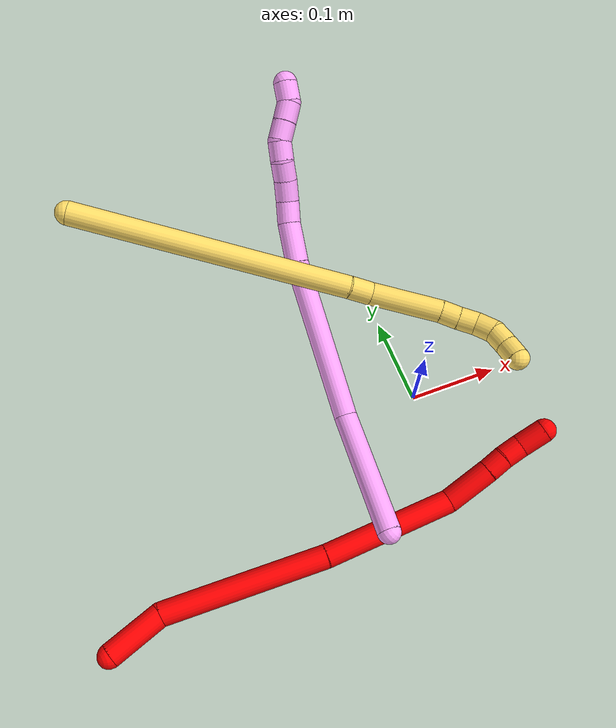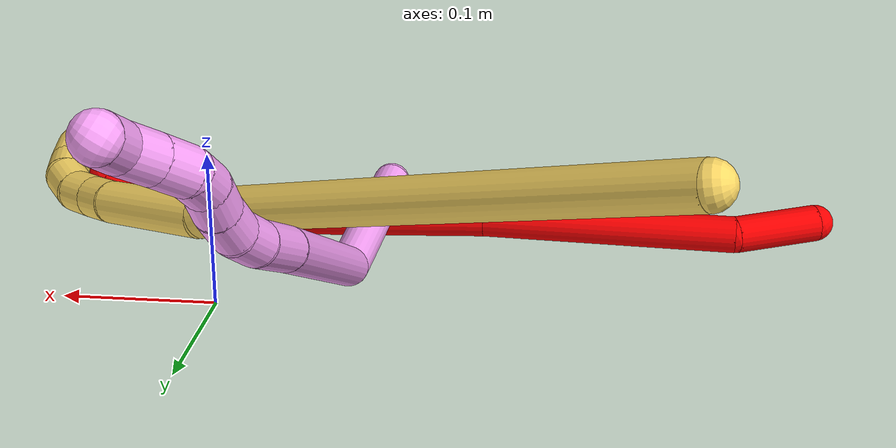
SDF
<sdf version="1.7">
 <world name="default">
  <model name="2">
   <static>0</static>
   <link name="2">
    <collision name="collision-cylinder-e_1_1_4">
     <pose>0.009213 0.007219 -0.026918 -2.87956 0.319256 -1.7698</pose>
     <geometry><cylinder><radius>0.0125</radius><length>0.058705</length></cylinder></geometry>
     <surface>
      <friction><ode><mu>1.16</mu><mu2>1.16</mu2><slip1>0</slip1><slip2>0</slip2></ode></friction>
      <contact><ode><kp>1e+06</kp><kd>1</kd><max_vel>0</max_vel><min_depth>0.001</min_depth></ode></contact>
     </surface>
    </collision>
    <visual name="visual-cylinder-e_1_1_4">
     <pose>0.009213 0.007219 -0.026918 -2.87956 0.319256 -1.7698</pose>
     <geometry><cylinder><radius>0.0125</radius><length>0.058705</length></cylinder></geometry>
     <material><ambient>1 0 0 1</ambient></material>
    </visual>
    <collision name="collision-cylinder-e_2_4_5">
     <pose>0.062412 0.007383 -0.128678 3.0476 0.529418 2.79802</pose>
     <geometry><cylinder><radius>0.0125</radius><length>0.174195</length></cylinder></geometry>
     <surface>
      <friction><ode><mu>1.16</mu><mu2>1.16</mu2><slip1>0</slip1><slip2>0</slip2></ode></friction>
      <contact><ode><kp>1e+06</kp><kd>1</kd><max_vel>0</max_vel><min_depth>0.001</min_depth></ode></contact>
     </surface>
    </collision>
    <visual name="visual-cylinder-e_2_4_5">
     <pose>0.062412 0.007383 -0.128678 3.0476 0.529418 2.79802</pose>
     <geometry><cylinder><radius>0.0125</radius><length>0.174195</length></cylinder></geometry>
     <material><ambient>1 0 0 1</ambient></material>
    </visual>
    <collision name="collision-cylinder-e_3_5_6">
     <pose>0.138967 -0.0001 -0.266398 3.13479 0.477902 3.11367</pose>
     <geometry><cylinder><radius>0.0125</radius><length>0.141627</length></cylinder></geometry>
     <surface>
      <friction><ode><mu>1.16</mu><mu2>1.16</mu2><slip1>0</slip1><slip2>0</slip2></ode></friction>
      <contact><ode><kp>1e+06</kp><kd>1</kd><max_vel>0</max_vel><min_depth>0.001</min_depth></ode></contact>
     </surface>
    </collision>
    <visual name="visual-cylinder-e_3_5_6">
     <pose>0.138967 -0.0001 -0.266398 3.13479 0.477902 3.11367</pose>
     <geometry><cylinder><radius>0.0125</radius><length>0.141627</length></cylinder></geometry>
     <material><ambient>1 0 0 1</ambient></material>
    </visual>
    <collision name="collision-cylinder-e_4_6_7">
     <pose>0.188359 0.006488 -0.348212 -2.78677 0.694587 -2.22175</pose>
     <geometry><cylinder><radius>0.0125</radius><length>0.052565</length></cylinder></geometry>
     <surface>
      <friction><ode><mu>1.16</mu><mu2>1.16</mu2><slip1>0</slip1><slip2>0</slip2></ode></friction>
      <contact><ode><kp>1e+06</kp><kd>1</kd><max_vel>0</max_vel><min_depth>0.001</min_depth></ode></contact>
     </surface>
    </collision>
    <visual name="visual-cylinder-e_4_6_7">
     <pose>0.188359 0.006488 -0.348212 -2.78677 0.694587 -2.22175</pose>
     <geometry><cylinder><radius>0.0125</radius><length>0.052565</length></cylinder></geometry>
     <material><ambient>1 0 0 1</ambient></material>
    </visual>
    <collision name="collision-cylinder-e_5_7_8">
     <pose>0.21163 0.01679 -0.374954 -2.74314 0.650783 -2.06304</pose>
     <geometry><cylinder><radius>0.0125</radius><length>0.02129</length></cylinder></geometry>
     <surface>
      <friction><ode><mu>1.16</mu><mu2>1.16</mu2><slip1>0</slip1><slip2>0</slip2></ode></friction>
      <contact><ode><kp>1e+06</kp><kd>1</kd><max_vel>0</max_vel><min_depth>0.001</min_depth></ode></contact>
     </surface>
    </collision>
    <visual name="visual-cylinder-e_5_7_8">
     <pose>0.21163 0.01679 -0.374954 -2.74314 0.650783 -2.06304</pose>
     <geometry><cylinder><radius>0.0125</radius><length>0.02129</length></cylinder></geometry>
     <material><ambient>1 0 0 1</ambient></material>
    </visual>
    <collision name="collision-cylinder-e_6_8_9">
     <pose>0.224182 0.022308 -0.391518 -2.89214 0.593936 -2.36391</pose>
     <geometry><cylinder><radius>0.0125</radius><length>0.021812</length></cylinder></geometry>
     <surface>
      <friction><ode><mu>1.16</mu><mu2>1.16</mu2><slip1>0</slip1><slip2>0</slip2></ode></friction>
      <contact><ode><kp>1e+06</kp><kd>1</kd><max_vel>0</max_vel><min_depth>0.001</min_depth></ode></contact>
     </surface>
    </collision>
    <visual name="visual-cylinder-e_6_8_9">
     <pose>0.224182 0.022308 -0.391518 -2.89214 0.593936 -2.36391</pose>
     <geometry><cylinder><radius>0.0125</radius><length>0.021812</length></cylinder></geometry>
     <material><ambient>1 0 0 1</ambient></material>
    </visual>
    <collision name="collision-cylinder-e_7_9_2">
     <pose>0.241149 0.027547 -0.410024 -2.84225 0.816814 -2.47097</pose>
     <geometry><cylinder><radius>0.0125</radius><length>0.029806</length></cylinder></geometry>
     <surface>
      <friction><ode><mu>1.16</mu><mu2>1.16</mu2><slip1>0</slip1><slip2>0</slip2></ode></friction>
      <contact><ode><kp>1e+06</kp><kd>1</kd><max_vel>0</max_vel><min_depth>0.001</min_depth></ode></contact>
     </surface>
    </collision>
    <visual name="visual-cylinder-e_7_9_2">
     <pose>0.241149 0.027547 -0.410024 -2.84225 0.816814 -2.47097</pose>
     <geometry><cylinder><radius>0.0125</radius><length>0.029806</length></cylinder></geometry>
     <material><ambient>1 0 0 1</ambient></material>
    </visual>
    <collision name="collision-sphere-2">
     <pose>0.252013 0.030556 -0.419772 0 -0 0</pose>
     <geometry><sphere><radius>0.0125</radius></sphere></geometry>
     <surface>
      <friction><ode><mu>1.16</mu><mu2>1.16</mu2><slip1>0</slip1><slip2>0</slip2></ode></friction>
      <contact><ode><kp>1e+06</kp><kd>1</kd><max_vel>0</max_vel><min_depth>0.001</min_depth></ode></contact>
     </surface>
    </collision>
    <visual name="visual-sphere-2">
     <pose>0.252013 0.030556 -0.419772 0 -0 0</pose>
     <geometry><sphere><radius>0.0125</radius></sphere></geometry>
     <material><ambient>1 0 0 1</ambient></material>
    </visual>
    <collision name="collision-sphere-9">
     <pose>0.230286 0.024539 -0.400276 0 -0 0</pose>
     <geometry><sphere><radius>0.0125</radius></sphere></geometry>
     <surface>
      <friction><ode><mu>1.16</mu><mu2>1.16</mu2><slip1>0</slip1><slip2>0</slip2></ode></friction>
      <contact><ode><kp>1e+06</kp><kd>1</kd><max_vel>0</max_vel><min_depth>0.001</min_depth></ode></contact>
     </surface>
    </collision>
    <visual name="visual-sphere-9">
     <pose>0.230286 0.024539 -0.400276 0 -0 0</pose>
     <geometry><sphere><radius>0.0125</radius></sphere></geometry>
     <material><ambient>1 0 0 1</ambient></material>
    </visual>
    <collision name="collision-sphere-4">
     <pose>0.018425 0.014439 -0.053836 0 -0 0</pose>
     <geometry><sphere><radius>0.0125</radius></sphere></geometry>
     <surface>
      <friction><ode><mu>1.16</mu><mu2>1.16</mu2><slip1>0</slip1><slip2>0</slip2></ode></friction>
      <contact><ode><kp>1e+06</kp><kd>1</kd><max_vel>0</max_vel><min_depth>0.001</min_depth></ode></contact>
     </surface>
    </collision>
    <visual name="visual-sphere-4">
     <pose>0.018425 0.014439 -0.053836 0 -0 0</pose>
     <geometry><sphere><radius>0.0125</radius></sphere></geometry>
     <material><ambient>1 0 0 1</ambient></material>
    </visual>
    <collision name="collision-sphere-1">
     <geometry><sphere><radius>0.0125</radius></sphere></geometry>
     <surface>
      <friction><ode><mu>1.16</mu><mu2>1.16</mu2><slip1>0</slip1><slip2>0</slip2></ode></friction>
      <contact><ode><kp>1e+06</kp><kd>1</kd><max_vel>0</max_vel><min_depth>0.001</min_depth></ode></contact>
     </surface>
    </collision>
    <visual name="visual-sphere-1">
     <geometry><sphere><radius>0.0125</radius></sphere></geometry>
     <material><ambient>1 0 0 1</ambient></material>
    </visual>
    <collision name="collision-sphere-8">
     <pose>0.218079 0.020076 -0.38276 0 -0 0</pose>
     <geometry><sphere><radius>0.0125</radius></sphere></geometry>
     <surface>
      <friction><ode><mu>1.16</mu><mu2>1.16</mu2><slip1>0</slip1><slip2>0</slip2></ode></friction>
      <contact><ode><kp>1e+06</kp><kd>1</kd><max_vel>0</max_vel><min_depth>0.001</min_depth></ode></contact>
     </surface>
    </collision>
    <visual name="visual-sphere-8">
     <pose>0.218079 0.020076 -0.38276 0 -0 0</pose>
     <geometry><sphere><radius>0.0125</radius></sphere></geometry>
     <material><ambient>1 0 0 1</ambient></material>
    </visual>
    <collision name="collision-sphere-5">
     <pose>0.106399 0.000328 -0.20352 0 -0 0</pose>
     <geometry><sphere><radius>0.0125</radius></sphere></geometry>
     <surface>
      <friction><ode><mu>1.16</mu><mu2>1.16</mu2><slip1>0</slip1><slip2>0</slip2></ode></friction>
      <contact><ode><kp>1e+06</kp><kd>1</kd><max_vel>0</max_vel><min_depth>0.001</min_depth></ode></contact>
     </surface>
    </collision>
    <visual name="visual-sphere-5">
     <pose>0.106399 0.000328 -0.20352 0 -0 0</pose>
     <geometry><sphere><radius>0.0125</radius></sphere></geometry>
     <material><ambient>1 0 0 1</ambient></material>
    </visual>
    <collision name="collision-sphere-6">
     <pose>0.171536 -0.000527 -0.329277 0 -0 0</pose>
     <geometry><sphere><radius>0.0125</radius></sphere></geometry>
     <surface>
      <friction><ode><mu>1.16</mu><mu2>1.16</mu2><slip1>0</slip1><slip2>0</slip2></ode></friction>
      <contact><ode><kp>1e+06</kp><kd>1</kd><max_vel>0</max_vel><min_depth>0.001</min_depth></ode></contact>
     </surface>
    </collision>
    <visual name="visual-sphere-6">
     <pose>0.171536 -0.000527 -0.329277 0 -0 0</pose>
     <geometry><sphere><radius>0.0125</radius></sphere></geometry>
     <material><ambient>1 0 0 1</ambient></material>
    </visual>
    <collision name="collision-sphere-7">
     <pose>0.205181 0.013504 -0.367148 0 -0 0</pose>
     <geometry><sphere><radius>0.0125</radius></sphere></geometry>
     <surface>
      <friction><ode><mu>1.16</mu><mu2>1.16</mu2><slip1>0</slip1><slip2>0</slip2></ode></friction>
      <contact><ode><kp>1e+06</kp><kd>1</kd><max_vel>0</max_vel><min_depth>0.001</min_depth></ode></contact>
     </surface>
    </collision>
    <visual name="visual-sphere-7">
     <pose>0.205181 0.013504 -0.367148 0 -0 0</pose>
     <geometry><sphere><radius>0.0125</radius></sphere></geometry>
     <material><ambient>1 0 0 1</ambient></material>
    </visual>
    <inertial>
     <pose>0.115157 0.007404 -0.217544 0 -0 0</pose>
     <mass>0.5</mass>
     <inertia>
      <ixx>-0.000466</ixx>
      <ixy>0</ixy>
      <ixz>0</ixz>
      <iyy>0.000798</iyy>
      <iyz>0</iyz>
      <izz>-0.000362</izz>
     </inertia>
    </inertial>
   </link>
   <pose>-0.388089 -0.146341 0.014939 0.67056 -0.973482 -0.525258</pose>
  </model>
  <model name="4">
   <static>0</static>
   <link name="4">
    <collision name="collision-cylinder-e_1_1_4">
     <pose>0.023249 0.062705 0.006653 -1.4651 0.35324 -0.318374</pose>
     <geometry><cylinder><radius>0.0125</radius><length>0.134413</length></cylinder></geometry>
     <surface>
      <friction><ode><mu>1.16</mu><mu2>1.16</mu2><slip1>0</slip1><slip2>0</slip2></ode></friction>
      <contact><ode><kp>1e+06</kp><kd>1</kd><max_vel>0</max_vel><min_depth>0.001</min_depth></ode></contact>
     </surface>
    </collision>
    <visual name="visual-cylinder-e_1_1_4">
     <pose>0.023249 0.062705 0.006653 -1.4651 0.35324 -0.318374</pose>
     <geometry><cylinder><radius>0.0125</radius><length>0.134413</length></cylinder></geometry>
     <material><ambient>1 0.65098 0.996078 1</ambient></material>
    </visual>
    <collision name="collision-cylinder-e_2_4_5">
     <pose>0.037279 0.206842 0.042992 -1.22121 -0.105974 0.074198</pose>
     <geometry><cylinder><radius>0.0125</radius><length>0.174328</length></cylinder></geometry>
     <surface>
      <friction><ode><mu>1.16</mu><mu2>1.16</mu2><slip1>0</slip1><slip2>0</slip2></ode></friction>
      <contact><ode><kp>1e+06</kp><kd>1</kd><max_vel>0</max_vel><min_depth>0.001</min_depth></ode></contact>
     </surface>
    </collision>
    <visual name="visual-cylinder-e_2_4_5">
     <pose>0.037279 0.206842 0.042992 -1.22121 -0.105974 0.074198</pose>
     <geometry><cylinder><radius>0.0125</radius><length>0.174328</length></cylinder></geometry>
     <material><ambient>1 0.65098 0.996078 1</ambient></material>
    </visual>
    <collision name="collision-cylinder-e_3_5_6">
     <pose>0.027051 0.307924 0.08196 -1.12952 -0.046352 0.029372</pose>
     <geometry><cylinder><radius>0.0125</radius><length>0.043509</length></cylinder></geometry>
     <surface>
      <friction><ode><mu>1.16</mu><mu2>1.16</mu2><slip1>0</slip1><slip2>0</slip2></ode></friction>
      <contact><ode><kp>1e+06</kp><kd>1</kd><max_vel>0</max_vel><min_depth>0.001</min_depth></ode></contact>
     </surface>
    </collision>
    <visual name="visual-cylinder-e_3_5_6">
     <pose>0.027051 0.307924 0.08196 -1.12952 -0.046352 0.029372</pose>
     <geometry><cylinder><radius>0.0125</radius><length>0.043509</length></cylinder></geometry>
     <material><ambient>1 0.65098 0.996078 1</ambient></material>
    </visual>
    <collision name="collision-cylinder-e_4_6_7">
     <pose>0.024668 0.337329 0.098037 -0.962383 -0.115152 0.060172</pose>
     <geometry><cylinder><radius>0.0125</radius><length>0.023937</length></cylinder></geometry>
     <surface>
      <friction><ode><mu>1.16</mu><mu2>1.16</mu2><slip1>0</slip1><slip2>0</slip2></ode></friction>
      <contact><ode><kp>1e+06</kp><kd>1</kd><max_vel>0</max_vel><min_depth>0.001</min_depth></ode></contact>
     </surface>
    </collision>
    <visual name="visual-cylinder-e_4_6_7">
     <pose>0.024668 0.337329 0.098037 -0.962383 -0.115152 0.060172</pose>
     <geometry><cylinder><radius>0.0125</radius><length>0.023937</length></cylinder></geometry>
     <material><ambient>1 0.65098 0.996078 1</ambient></material>
    </visual>
    <collision name="collision-cylinder-e_5_7_8">
     <pose>0.019304 0.355288 0.111627 -0.879053 -0.358255 0.169868</pose>
     <geometry><cylinder><radius>0.0125</radius><length>0.022749</length></cylinder></geometry>
     <surface>
      <friction><ode><mu>1.16</mu><mu2>1.16</mu2><slip1>0</slip1><slip2>0</slip2></ode></friction>
      <contact><ode><kp>1e+06</kp><kd>1</kd><max_vel>0</max_vel><min_depth>0.001</min_depth></ode></contact>
     </surface>
    </collision>
    <visual name="visual-cylinder-e_5_7_8">
     <pose>0.019304 0.355288 0.111627 -0.879053 -0.358255 0.169868</pose>
     <geometry><cylinder><radius>0.0125</radius><length>0.022749</length></cylinder></geometry>
     <material><ambient>1 0.65098 0.996078 1</ambient></material>
    </visual>
    <collision name="collision-cylinder-e_6_8_9">
     <pose>0.010786 0.370534 0.123988 -0.901895 -0.467358 0.229504</pose>
     <geometry><cylinder><radius>0.0125</radius><length>0.020109</length></cylinder></geometry>
     <surface>
      <friction><ode><mu>1.16</mu><mu2>1.16</mu2><slip1>0</slip1><slip2>0</slip2></ode></friction>
      <contact><ode><kp>1e+06</kp><kd>1</kd><max_vel>0</max_vel><min_depth>0.001</min_depth></ode></contact>
     </surface>
    </collision>
    <visual name="visual-cylinder-e_6_8_9">
     <pose>0.010786 0.370534 0.123988 -0.901895 -0.467358 0.229504</pose>
     <geometry><cylinder><radius>0.0125</radius><length>0.020109</length></cylinder></geometry>
     <material><ambient>1 0.65098 0.996078 1</ambient></material>
    </visual>
    <collision name="collision-cylinder-e_7_9_10">
     <pose>0.004079 0.385739 0.135017 -0.981032 -0.218161 0.11684</pose>
     <geometry><cylinder><radius>0.0125</radius><length>0.020121</length></cylinder></geometry>
     <surface>
      <friction><ode><mu>1.16</mu><mu2>1.16</mu2><slip1>0</slip1><slip2>0</slip2></ode></friction>
      <contact><ode><kp>1e+06</kp><kd>1</kd><max_vel>0</max_vel><min_depth>0.001</min_depth></ode></contact>
     </surface>
    </collision>
    <visual name="visual-cylinder-e_7_9_10">
     <pose>0.004079 0.385739 0.135017 -0.981032 -0.218161 0.11684</pose>
     <geometry><cylinder><radius>0.0125</radius><length>0.020121</length></cylinder></geometry>
     <material><ambient>1 0.65098 0.996078 1</ambient></material>
    </visual>
    <collision name="collision-cylinder-e_8_10_11">
     <pose>0.002385 0.400233 0.148393 -0.674835 0.047696 -0.016736</pose>
     <geometry><cylinder><radius>0.0125</radius><length>0.020292</length></cylinder></geometry>
     <surface>
      <friction><ode><mu>1.16</mu><mu2>1.16</mu2><slip1>0</slip1><slip2>0</slip2></ode></friction>
      <contact><ode><kp>1e+06</kp><kd>1</kd><max_vel>0</max_vel><min_depth>0.001</min_depth></ode></contact>
     </surface>
    </collision>
    <visual name="visual-cylinder-e_8_10_11">
     <pose>0.002385 0.400233 0.148393 -0.674835 0.047696 -0.016736</pose>
     <geometry><cylinder><radius>0.0125</radius><length>0.020292</length></cylinder></geometry>
     <material><ambient>1 0.65098 0.996078 1</ambient></material>
    </visual>
    <collision name="collision-cylinder-e_9_11_12">
     <pose>0.003496 0.413074 0.164118 -0.694687 0.061549 -0.022288</pose>
     <geometry><cylinder><radius>0.0125</radius><length>0.020377</length></cylinder></geometry>
     <surface>
      <friction><ode><mu>1.16</mu><mu2>1.16</mu2><slip1>0</slip1><slip2>0</slip2></ode></friction>
      <contact><ode><kp>1e+06</kp><kd>1</kd><max_vel>0</max_vel><min_depth>0.001</min_depth></ode></contact>
     </surface>
    </collision>
    <visual name="visual-cylinder-e_9_11_12">
     <pose>0.003496 0.413074 0.164118 -0.694687 0.061549 -0.022288</pose>
     <geometry><cylinder><radius>0.0125</radius><length>0.020377</length></cylinder></geometry>
     <material><ambient>1 0.65098 0.996078 1</ambient></material>
    </visual>
    <collision name="collision-cylinder-e_10_12_2">
     <pose>0.003086 0.428521 0.176483 -1.0997 -0.103012 0.063171</pose>
     <geometry><cylinder><radius>0.0125</radius><length>0.020167</length></cylinder></geometry>
     <surface>
      <friction><ode><mu>1.16</mu><mu2>1.16</mu2><slip1>0</slip1><slip2>0</slip2></ode></friction>
      <contact><ode><kp>1e+06</kp><kd>1</kd><max_vel>0</max_vel><min_depth>0.001</min_depth></ode></contact>
     </surface>
    </collision>
    <visual name="visual-cylinder-e_10_12_2">
     <pose>0.003086 0.428521 0.176483 -1.0997 -0.103012 0.063171</pose>
     <geometry><cylinder><radius>0.0125</radius><length>0.020167</length></cylinder></geometry>
     <material><ambient>1 0.65098 0.996078 1</ambient></material>
    </visual>
    <collision name="collision-sphere-2">
     <pose>0.002049 0.437459 0.181035 0 -0 0</pose>
     <geometry><sphere><radius>0.0125</radius></sphere></geometry>
     <surface>
      <friction><ode><mu>1.16</mu><mu2>1.16</mu2><slip1>0</slip1><slip2>0</slip2></ode></friction>
      <contact><ode><kp>1e+06</kp><kd>1</kd><max_vel>0</max_vel><min_depth>0.001</min_depth></ode></contact>
     </surface>
    </collision>
    <visual name="visual-sphere-2">
     <pose>0.002049 0.437459 0.181035 0 -0 0</pose>
     <geometry><sphere><radius>0.0125</radius></sphere></geometry>
     <material><ambient>1 0.65098 0.996078 1</ambient></material>
    </visual>
    <collision name="collision-sphere-12">
     <pose>0.004122 0.419584 0.171931 0 -0 0</pose>
     <geometry><sphere><radius>0.0125</radius></sphere></geometry>
     <surface>
      <friction><ode><mu>1.16</mu><mu2>1.16</mu2><slip1>0</slip1><slip2>0</slip2></ode></friction>
      <contact><ode><kp>1e+06</kp><kd>1</kd><max_vel>0</max_vel><min_depth>0.001</min_depth></ode></contact>
     </surface>
    </collision>
    <visual name="visual-sphere-12">
     <pose>0.004122 0.419584 0.171931 0 -0 0</pose>
     <geometry><sphere><radius>0.0125</radius></sphere></geometry>
     <material><ambient>1 0.65098 0.996078 1</ambient></material>
    </visual>
    <collision name="collision-sphere-11">
     <pose>0.002869 0.406565 0.156306 0 -0 0</pose>
     <geometry><sphere><radius>0.0125</radius></sphere></geometry>
     <surface>
      <friction><ode><mu>1.16</mu><mu2>1.16</mu2><slip1>0</slip1><slip2>0</slip2></ode></friction>
      <contact><ode><kp>1e+06</kp><kd>1</kd><max_vel>0</max_vel><min_depth>0.001</min_depth></ode></contact>
     </surface>
    </collision>
    <visual name="visual-sphere-11">
     <pose>0.002869 0.406565 0.156306 0 -0 0</pose>
     <geometry><sphere><radius>0.0125</radius></sphere></geometry>
     <material><ambient>1 0.65098 0.996078 1</ambient></material>
    </visual>
    <collision name="collision-sphere-10">
     <pose>0.001902 0.393902 0.14048 0 -0 0</pose>
     <geometry><sphere><radius>0.0125</radius></sphere></geometry>
     <surface>
      <friction><ode><mu>1.16</mu><mu2>1.16</mu2><slip1>0</slip1><slip2>0</slip2></ode></friction>
      <contact><ode><kp>1e+06</kp><kd>1</kd><max_vel>0</max_vel><min_depth>0.001</min_depth></ode></contact>
     </surface>
    </collision>
    <visual name="visual-sphere-10">
     <pose>0.001902 0.393902 0.14048 0 -0 0</pose>
     <geometry><sphere><radius>0.0125</radius></sphere></geometry>
     <material><ambient>1 0.65098 0.996078 1</ambient></material>
    </visual>
    <collision name="collision-sphere-9">
     <pose>0.006257 0.377576 0.129555 0 -0 0</pose>
     <geometry><sphere><radius>0.0125</radius></sphere></geometry>
     <surface>
      <friction><ode><mu>1.16</mu><mu2>1.16</mu2><slip1>0</slip1><slip2>0</slip2></ode></friction>
      <contact><ode><kp>1e+06</kp><kd>1</kd><max_vel>0</max_vel><min_depth>0.001</min_depth></ode></contact>
     </surface>
    </collision>
    <visual name="visual-sphere-9">
     <pose>0.006257 0.377576 0.129555 0 -0 0</pose>
     <geometry><sphere><radius>0.0125</radius></sphere></geometry>
     <material><ambient>1 0.65098 0.996078 1</ambient></material>
    </visual>
    <collision name="collision-sphere-4">
     <pose>0.046499 0.12541 0.013306 0 -0 0</pose>
     <geometry><sphere><radius>0.0125</radius></sphere></geometry>
     <surface>
      <friction><ode><mu>1.16</mu><mu2>1.16</mu2><slip1>0</slip1><slip2>0</slip2></ode></friction>
      <contact><ode><kp>1e+06</kp><kd>1</kd><max_vel>0</max_vel><min_depth>0.001</min_depth></ode></contact>
     </surface>
    </collision>
    <visual name="visual-sphere-4">
     <pose>0.046499 0.12541 0.013306 0 -0 0</pose>
     <geometry><sphere><radius>0.0125</radius></sphere></geometry>
     <material><ambient>1 0.65098 0.996078 1</ambient></material>
    </visual>
    <collision name="collision-sphere-1">
     <geometry><sphere><radius>0.0125</radius></sphere></geometry>
     <surface>
      <friction><ode><mu>1.16</mu><mu2>1.16</mu2><slip1>0</slip1><slip2>0</slip2></ode></friction>
      <contact><ode><kp>1e+06</kp><kd>1</kd><max_vel>0</max_vel><min_depth>0.001</min_depth></ode></contact>
     </surface>
    </collision>
    <visual name="visual-sphere-1">
     <geometry><sphere><radius>0.0125</radius></sphere></geometry>
     <material><ambient>1 0.65098 0.996078 1</ambient></material>
    </visual>
    <collision name="collision-sphere-8">
     <pose>0.015316 0.363492 0.118422 0 -0 0</pose>
     <geometry><sphere><radius>0.0125</radius></sphere></geometry>
     <surface>
      <friction><ode><mu>1.16</mu><mu2>1.16</mu2><slip1>0</slip1><slip2>0</slip2></ode></friction>
      <contact><ode><kp>1e+06</kp><kd>1</kd><max_vel>0</max_vel><min_depth>0.001</min_depth></ode></contact>
     </surface>
    </collision>
    <visual name="visual-sphere-8">
     <pose>0.015316 0.363492 0.118422 0 -0 0</pose>
     <geometry><sphere><radius>0.0125</radius></sphere></geometry>
     <material><ambient>1 0.65098 0.996078 1</ambient></material>
    </visual>
    <collision name="collision-sphere-5">
     <pose>0.028059 0.288275 0.072679 0 -0 0</pose>
     <geometry><sphere><radius>0.0125</radius></sphere></geometry>
     <surface>
      <friction><ode><mu>1.16</mu><mu2>1.16</mu2><slip1>0</slip1><slip2>0</slip2></ode></friction>
      <contact><ode><kp>1e+06</kp><kd>1</kd><max_vel>0</max_vel><min_depth>0.001</min_depth></ode></contact>
     </surface>
    </collision>
    <visual name="visual-sphere-5">
     <pose>0.028059 0.288275 0.072679 0 -0 0</pose>
     <geometry><sphere><radius>0.0125</radius></sphere></geometry>
     <material><ambient>1 0.65098 0.996078 1</ambient></material>
    </visual>
    <collision name="collision-sphere-6">
     <pose>0.026043 0.327573 0.091241 0 -0 0</pose>
     <geometry><sphere><radius>0.0125</radius></sphere></geometry>
     <surface>
      <friction><ode><mu>1.16</mu><mu2>1.16</mu2><slip1>0</slip1><slip2>0</slip2></ode></friction>
      <contact><ode><kp>1e+06</kp><kd>1</kd><max_vel>0</max_vel><min_depth>0.001</min_depth></ode></contact>
     </surface>
    </collision>
    <visual name="visual-sphere-6">
     <pose>0.026043 0.327573 0.091241 0 -0 0</pose>
     <geometry><sphere><radius>0.0125</radius></sphere></geometry>
     <material><ambient>1 0.65098 0.996078 1</ambient></material>
    </visual>
    <collision name="collision-sphere-7">
     <pose>0.023293 0.347085 0.104832 0 -0 0</pose>
     <geometry><sphere><radius>0.0125</radius></sphere></geometry>
     <surface>
      <friction><ode><mu>1.16</mu><mu2>1.16</mu2><slip1>0</slip1><slip2>0</slip2></ode></friction>
      <contact><ode><kp>1e+06</kp><kd>1</kd><max_vel>0</max_vel><min_depth>0.001</min_depth></ode></contact>
     </surface>
    </collision>
    <visual name="visual-sphere-7">
     <pose>0.023293 0.347085 0.104832 0 -0 0</pose>
     <geometry><sphere><radius>0.0125</radius></sphere></geometry>
     <material><ambient>1 0.65098 0.996078 1</ambient></material>
    </visual>
    <inertial>
     <pose>0.024622 0.228868 0.063931 0 -0 0</pose>
     <mass>0.5</mass>
     <inertia>
      <ixx>0.000622</ixx>
      <ixy>0</ixy>
      <ixz>0</ixz>
      <iyy>0.000218</iyy>
      <iyz>0</iyz>
      <izz>-0.000637</izz>
     </inertia>
    </inertial>
   </link>
   <pose>-0.093302 -0.137056 0.037006 0.30726 0.949668 0.478497</pose>
  </model>
  <model name="5">
   <static>0</static>
   <link name="5">
    <collision name="collision-cylinder-e_1_1_4">
     <pose>0.004317 -0.035497 -0.143211 2.89862 0.029252 0.238484</pose>
     <geometry><cylinder><radius>0.0125</radius><length>0.295215</length></cylinder></geometry>
     <surface>
      <friction><ode><mu>1.16</mu><mu2>1.16</mu2><slip1>0</slip1><slip2>0</slip2></ode></friction>
      <contact><ode><kp>1e+06</kp><kd>1</kd><max_vel>0</max_vel><min_depth>0.001</min_depth></ode></contact>
     </surface>
    </collision>
    <visual name="visual-cylinder-e_1_1_4">
     <pose>0.004317 -0.035497 -0.143211 2.89862 0.029252 0.238484</pose>
     <geometry><cylinder><radius>0.0125</radius><length>0.295215</length></cylinder></geometry>
     <material><ambient>1 0.858824 0.4 1</ambient></material>
    </visual>
    <collision name="collision-cylinder-e_2_4_5">
     <pose>0.00728 -0.073738 -0.298796 2.92345 -0.106489 -0.905877</pose>
     <geometry><cylinder><radius>0.0125</radius><length>0.025495</length></cylinder></geometry>
     <surface>
      <friction><ode><mu>1.16</mu><mu2>1.16</mu2><slip1>0</slip1><slip2>0</slip2></ode></friction>
      <contact><ode><kp>1e+06</kp><kd>1</kd><max_vel>0</max_vel><min_depth>0.001</min_depth></ode></contact>
     </surface>
    </collision>
    <visual name="visual-cylinder-e_2_4_5">
     <pose>0.00728 -0.073738 -0.298796 2.92345 -0.106489 -0.905877</pose>
     <geometry><cylinder><radius>0.0125</radius><length>0.025495</length></cylinder></geometry>
     <material><ambient>1 0.858824 0.4 1</ambient></material>
    </visual>
    <collision name="collision-cylinder-e_3_5_6">
     <pose>0.012372 -0.087488 -0.348027 2.85138 0.166058 1.03534</pose>
     <geometry><cylinder><radius>0.0125</radius><length>0.078003</length></cylinder></geometry>
     <surface>
      <friction><ode><mu>1.16</mu><mu2>1.16</mu2><slip1>0</slip1><slip2>0</slip2></ode></friction>
      <contact><ode><kp>1e+06</kp><kd>1</kd><max_vel>0</max_vel><min_depth>0.001</min_depth></ode></contact>
     </surface>
    </collision>
    <visual name="visual-cylinder-e_3_5_6">
     <pose>0.012372 -0.087488 -0.348027 2.85138 0.166058 1.03534</pose>
     <geometry><cylinder><radius>0.0125</radius><length>0.078003</length></cylinder></geometry>
     <material><ambient>1 0.858824 0.4 1</ambient></material>
    </visual>
    <collision name="collision-cylinder-e_4_6_7">
     <pose>0.020734 -0.102642 -0.393874 2.70944 0.19116 0.823592</pose>
     <geometry><cylinder><radius>0.0125</radius><length>0.020167</length></cylinder></geometry>
     <surface>
      <friction><ode><mu>1.16</mu><mu2>1.16</mu2><slip1>0</slip1><slip2>0</slip2></ode></friction>
      <contact><ode><kp>1e+06</kp><kd>1</kd><max_vel>0</max_vel><min_depth>0.001</min_depth></ode></contact>
     </surface>
    </collision>
    <visual name="visual-cylinder-e_4_6_7">
     <pose>0.020734 -0.102642 -0.393874 2.70944 0.19116 0.823592</pose>
     <geometry><cylinder><radius>0.0125</radius><length>0.020167</length></cylinder></geometry>
     <material><ambient>1 0.858824 0.4 1</ambient></material>
    </visual>
    <collision name="collision-cylinder-e_5_7_8">
     <pose>0.025086 -0.110444 -0.411879 2.75629 0.245368 1.12737</pose>
     <geometry><cylinder><radius>0.0125</radius><length>0.020057</length></cylinder></geometry>
     <surface>
      <friction><ode><mu>1.16</mu><mu2>1.16</mu2><slip1>0</slip1><slip2>0</slip2></ode></friction>
      <contact><ode><kp>1e+06</kp><kd>1</kd><max_vel>0</max_vel><min_depth>0.001</min_depth></ode></contact>
     </surface>
    </collision>
    <visual name="visual-cylinder-e_5_7_8">
     <pose>0.025086 -0.110444 -0.411879 2.75629 0.245368 1.12737</pose>
     <geometry><cylinder><radius>0.0125</radius><length>0.020057</length></cylinder></geometry>
     <material><ambient>1 0.858824 0.4 1</ambient></material>
    </visual>
    <collision name="collision-cylinder-e_6_8_9">
     <pose>0.032218 -0.119654 -0.428353 2.50161 0.467625 1.24636</pose>
     <geometry><cylinder><radius>0.0125</radius><length>0.020837</length></cylinder></geometry>
     <surface>
      <friction><ode><mu>1.16</mu><mu2>1.16</mu2><slip1>0</slip1><slip2>0</slip2></ode></friction>
      <contact><ode><kp>1e+06</kp><kd>1</kd><max_vel>0</max_vel><min_depth>0.001</min_depth></ode></contact>
     </surface>
    </collision>
    <visual name="visual-cylinder-e_6_8_9">
     <pose>0.032218 -0.119654 -0.428353 2.50161 0.467625 1.24636</pose>
     <geometry><cylinder><radius>0.0125</radius><length>0.020837</length></cylinder></geometry>
     <material><ambient>1 0.858824 0.4 1</ambient></material>
    </visual>
    <collision name="collision-cylinder-e_7_9_10">
     <pose>0.040736 -0.133512 -0.439998 2.03773 0.389909 0.620636</pose>
     <geometry><cylinder><radius>0.0125</radius><length>0.020109</length></cylinder></geometry>
     <surface>
      <friction><ode><mu>1.16</mu><mu2>1.16</mu2><slip1>0</slip1><slip2>0</slip2></ode></friction>
      <contact><ode><kp>1e+06</kp><kd>1</kd><max_vel>0</max_vel><min_depth>0.001</min_depth></ode></contact>
     </surface>
    </collision>
    <visual name="visual-cylinder-e_7_9_10">
     <pose>0.040736 -0.133512 -0.439998 2.03773 0.389909 0.620636</pose>
     <geometry><cylinder><radius>0.0125</radius><length>0.020109</length></cylinder></geometry>
     <material><ambient>1 0.858824 0.4 1</ambient></material>
    </visual>
    <collision name="collision-cylinder-e_8_10_2">
     <pose>0.049665 -0.150115 -0.44668 1.86285 0.532525 0.703116</pose>
     <geometry><cylinder><radius>0.0125</radius><length>0.020118</length></cylinder></geometry>
     <surface>
      <friction><ode><mu>1.16</mu><mu2>1.16</mu2><slip1>0</slip1><slip2>0</slip2></ode></friction>
      <contact><ode><kp>1e+06</kp><kd>1</kd><max_vel>0</max_vel><min_depth>0.001</min_depth></ode></contact>
     </surface>
    </collision>
    <visual name="visual-cylinder-e_8_10_2">
     <pose>0.049665 -0.150115 -0.44668 1.86285 0.532525 0.703116</pose>
     <geometry><cylinder><radius>0.0125</radius><length>0.020118</length></cylinder></geometry>
     <material><ambient>1 0.858824 0.4 1</ambient></material>
    </visual>
    <collision name="collision-sphere-2">
     <pose>0.054772 -0.158414 -0.449175 0 -0 0</pose>
     <geometry><sphere><radius>0.0125</radius></sphere></geometry>
     <surface>
      <friction><ode><mu>1.16</mu><mu2>1.16</mu2><slip1>0</slip1><slip2>0</slip2></ode></friction>
      <contact><ode><kp>1e+06</kp><kd>1</kd><max_vel>0</max_vel><min_depth>0.001</min_depth></ode></contact>
     </surface>
    </collision>
    <visual name="visual-sphere-2">
     <pose>0.054772 -0.158414 -0.449175 0 -0 0</pose>
     <geometry><sphere><radius>0.0125</radius></sphere></geometry>
     <material><ambient>1 0.858824 0.4 1</ambient></material>
    </visual>
    <collision name="collision-sphere-10">
     <pose>0.044558 -0.141816 -0.444185 0 -0 0</pose>
     <geometry><sphere><radius>0.0125</radius></sphere></geometry>
     <surface>
      <friction><ode><mu>1.16</mu><mu2>1.16</mu2><slip1>0</slip1><slip2>0</slip2></ode></friction>
      <contact><ode><kp>1e+06</kp><kd>1</kd><max_vel>0</max_vel><min_depth>0.001</min_depth></ode></contact>
     </surface>
    </collision>
    <visual name="visual-sphere-10">
     <pose>0.044558 -0.141816 -0.444185 0 -0 0</pose>
     <geometry><sphere><radius>0.0125</radius></sphere></geometry>
     <material><ambient>1 0.858824 0.4 1</ambient></material>
    </visual>
    <collision name="collision-sphere-9">
     <pose>0.036915 -0.125208 -0.435812 0 -0 0</pose>
     <geometry><sphere><radius>0.0125</radius></sphere></geometry>
     <surface>
      <friction><ode><mu>1.16</mu><mu2>1.16</mu2><slip1>0</slip1><slip2>0</slip2></ode></friction>
      <contact><ode><kp>1e+06</kp><kd>1</kd><max_vel>0</max_vel><min_depth>0.001</min_depth></ode></contact>
     </surface>
    </collision>
    <visual name="visual-sphere-9">
     <pose>0.036915 -0.125208 -0.435812 0 -0 0</pose>
     <geometry><sphere><radius>0.0125</radius></sphere></geometry>
     <material><ambient>1 0.858824 0.4 1</ambient></material>
    </visual>
    <collision name="collision-sphere-4">
     <pose>0.008635 -0.070995 -0.286421 0 -0 0</pose>
     <geometry><sphere><radius>0.0125</radius></sphere></geometry>
     <surface>
      <friction><ode><mu>1.16</mu><mu2>1.16</mu2><slip1>0</slip1><slip2>0</slip2></ode></friction>
      <contact><ode><kp>1e+06</kp><kd>1</kd><max_vel>0</max_vel><min_depth>0.001</min_depth></ode></contact>
     </surface>
    </collision>
    <visual name="visual-sphere-4">
     <pose>0.008635 -0.070995 -0.286421 0 -0 0</pose>
     <geometry><sphere><radius>0.0125</radius></sphere></geometry>
     <material><ambient>1 0.858824 0.4 1</ambient></material>
    </visual>
    <collision name="collision-sphere-1">
     <geometry><sphere><radius>0.0125</radius></sphere></geometry>
     <surface>
      <friction><ode><mu>1.16</mu><mu2>1.16</mu2><slip1>0</slip1><slip2>0</slip2></ode></friction>
      <contact><ode><kp>1e+06</kp><kd>1</kd><max_vel>0</max_vel><min_depth>0.001</min_depth></ode></contact>
     </surface>
    </collision>
    <visual name="visual-sphere-1">
     <geometry><sphere><radius>0.0125</radius></sphere></geometry>
     <material><ambient>1 0.858824 0.4 1</ambient></material>
    </visual>
    <collision name="collision-sphere-8">
     <pose>0.027522 -0.1141 -0.420893 0 -0 0</pose>
     <geometry><sphere><radius>0.0125</radius></sphere></geometry>
     <surface>
      <friction><ode><mu>1.16</mu><mu2>1.16</mu2><slip1>0</slip1><slip2>0</slip2></ode></friction>
      <contact><ode><kp>1e+06</kp><kd>1</kd><max_vel>0</max_vel><min_depth>0.001</min_depth></ode></contact>
     </surface>
    </collision>
    <visual name="visual-sphere-8">
     <pose>0.027522 -0.1141 -0.420893 0 -0 0</pose>
     <geometry><sphere><radius>0.0125</radius></sphere></geometry>
     <material><ambient>1 0.858824 0.4 1</ambient></material>
    </visual>
    <collision name="collision-sphere-5">
     <pose>0.005925 -0.076481 -0.311171 0 -0 0</pose>
     <geometry><sphere><radius>0.0125</radius></sphere></geometry>
     <surface>
      <friction><ode><mu>1.16</mu><mu2>1.16</mu2><slip1>0</slip1><slip2>0</slip2></ode></friction>
      <contact><ode><kp>1e+06</kp><kd>1</kd><max_vel>0</max_vel><min_depth>0.001</min_depth></ode></contact>
     </surface>
    </collision>
    <visual name="visual-sphere-5">
     <pose>0.005925 -0.076481 -0.311171 0 -0 0</pose>
     <geometry><sphere><radius>0.0125</radius></sphere></geometry>
     <material><ambient>1 0.858824 0.4 1</ambient></material>
    </visual>
    <collision name="collision-sphere-6">
     <pose>0.018818 -0.098495 -0.384884 0 -0 0</pose>
     <geometry><sphere><radius>0.0125</radius></sphere></geometry>
     <surface>
      <friction><ode><mu>1.16</mu><mu2>1.16</mu2><slip1>0</slip1><slip2>0</slip2></ode></friction>
      <contact><ode><kp>1e+06</kp><kd>1</kd><max_vel>0</max_vel><min_depth>0.001</min_depth></ode></contact>
     </surface>
    </collision>
    <visual name="visual-sphere-6">
     <pose>0.018818 -0.098495 -0.384884 0 -0 0</pose>
     <geometry><sphere><radius>0.0125</radius></sphere></geometry>
     <material><ambient>1 0.858824 0.4 1</ambient></material>
    </visual>
    <collision name="collision-sphere-7">
     <pose>0.02265 -0.106788 -0.402864 0 -0 0</pose>
     <geometry><sphere><radius>0.0125</radius></sphere></geometry>
     <surface>
      <friction><ode><mu>1.16</mu><mu2>1.16</mu2><slip1>0</slip1><slip2>0</slip2></ode></friction>
      <contact><ode><kp>1e+06</kp><kd>1</kd><max_vel>0</max_vel><min_depth>0.001</min_depth></ode></contact>
     </surface>
    </collision>
    <visual name="visual-sphere-7">
     <pose>0.02265 -0.106788 -0.402864 0 -0 0</pose>
     <geometry><sphere><radius>0.0125</radius></sphere></geometry>
     <material><ambient>1 0.858824 0.4 1</ambient></material>
    </visual>
    <inertial>
     <pose>0.011672 -0.063333 -0.240013 0 -0 0</pose>
     <mass>0.5</mass>
     <inertia>
      <ixx>0.002673</ixx>
      <ixy>0</ixy>
      <ixz>0</ixz>
      <iyy>-0.001515</iyy>
      <iyz>0</iyz>
      <izz>0.000428</izz>
     </inertia>
    </inertial>
   </link>
   <pose>-0.29142 0.243071 0.182122 0.763703 -1.23856 -1.04682</pose>
  </model>
 </world>
</sdf>
